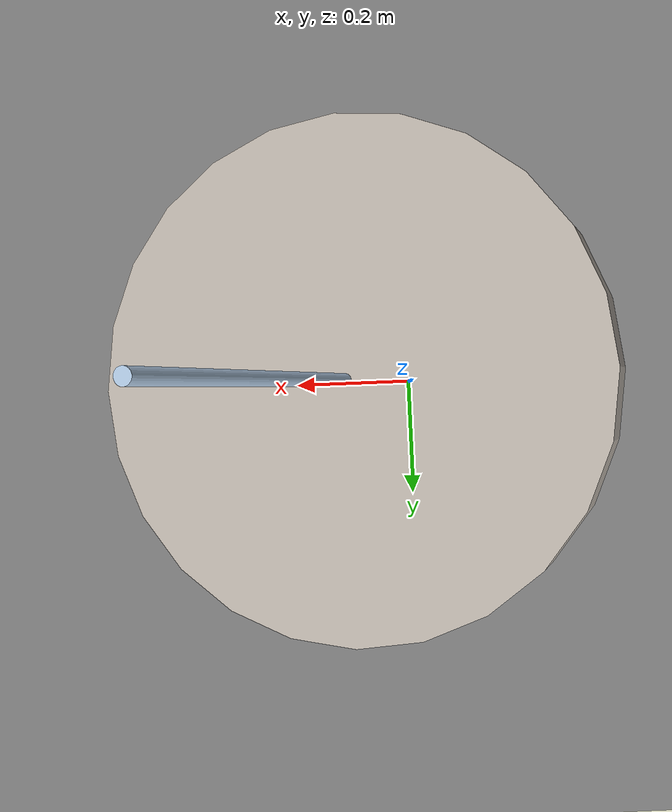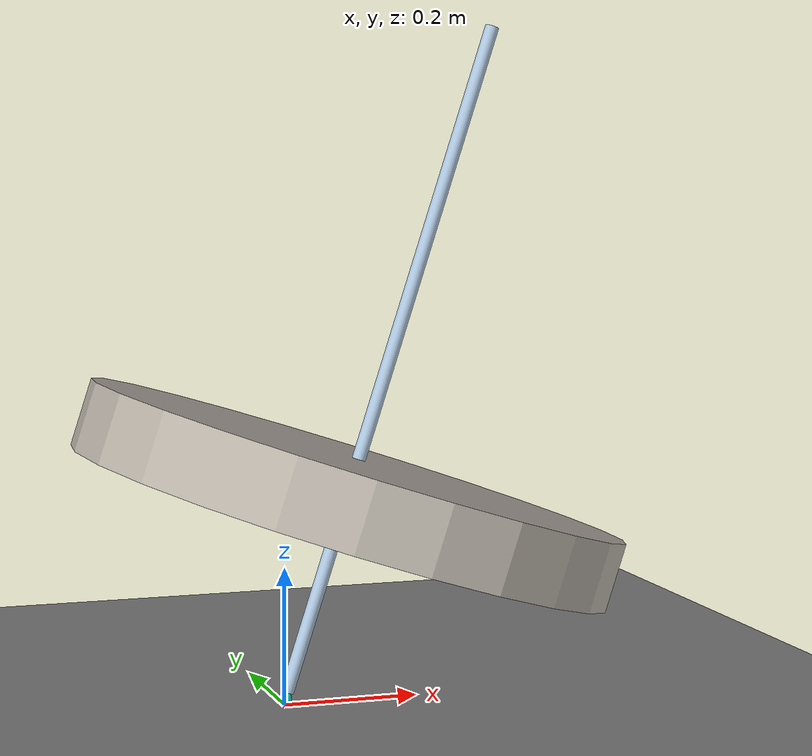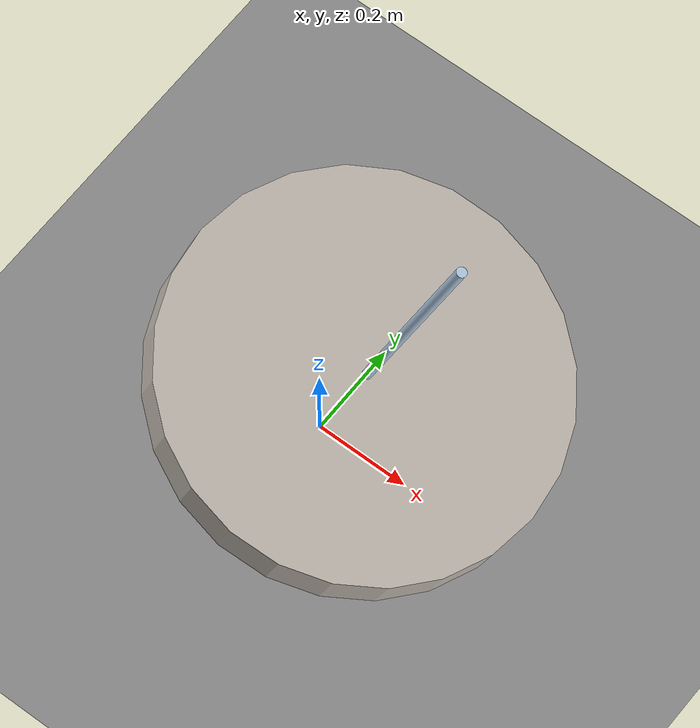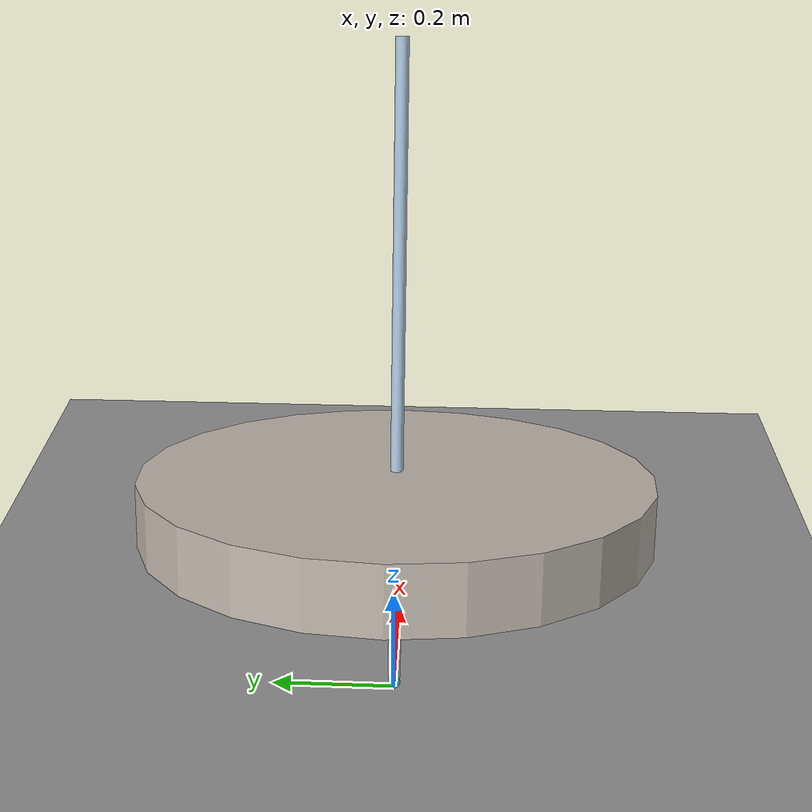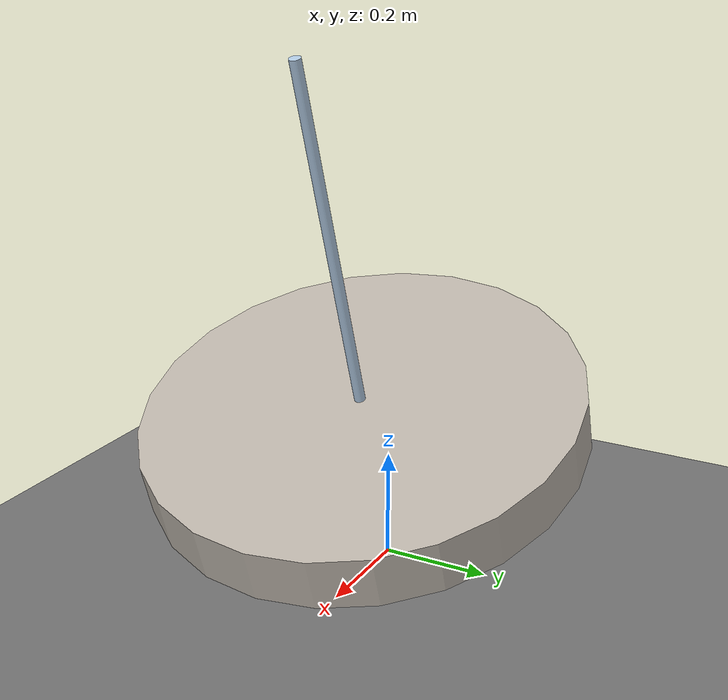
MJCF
<mujoco>
    <include file="./gyroscopic.xml" />
    <asset>
        <texture type="2d" name="plane" builtin="checker" mark="edge" rgb1="0.3 0.3 0.3" rgb2="0.7 0.7 0.7"
        markrgb="0.8 0.8 0.8" width="64" height="64"/>
        <texture type="skybox" builtin="gradient" rgb1="0.3 0.4 0.5" rgb2="0.027 0.023 0.049"
        width="100" height="100"/>

        <material name="plane_mat" texture="plane" texuniform="true" texrepeat="0.4 0.4" reflectance="0.2"/>
    </asset>

    <worldbody>
        <light pos="0 0 3" directional="true"/>
        <camera name="front_cam" pos="2.155 0.016 1.026" xyaxes="0.000 1.000 -0.000 -0.313 0.000 0.858"/>
        <!-- ground plane -->
        <geom type="plane" size="10 10 0.01" pos="0 0 0" material="plane_mat"/>
    </worldbody>

  </mujoco>

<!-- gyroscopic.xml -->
<mujoco>
    <option  gravity="0 0 -9.8" />
    <compiler autolimits="true"/>
    <statistic center="0 0 -0.6" extent="0.8"/>

    <asset>
        <texture name="motphys-ground" type="2d" file="./motphys-ground.png" />
        <material name="motphys-ground" texture="motphys-ground" texuniform="true" texrepeat="0.4 0.4"/>
    </asset>

    <default>
        <geom friction="0.25 0.01" condim="4"/>
    </default>

    <worldbody>
        <!-- gyroscopic -->
        <body name = "gyro" pos="0 0 0.01" euler="0 18 0">
            <freejoint  name="ball_1"/>
            <geom type="sphere" size="0.01" rgba = "0.117 0.890 0.811 1"/>
            <body pos="0 0 0.51">
                <geom type="cylinder" size="0.01 0.5" rgba = "0.7 0.8 0.9 1"/>
                <body pos="0 0 0">
                    <geom type="cylinder" pos="0 0 -0.2" size="0.4 0.05" material="motphys-ground"/>
                </body>
            </body>
        </body>
    </worldbody>
</mujoco>
